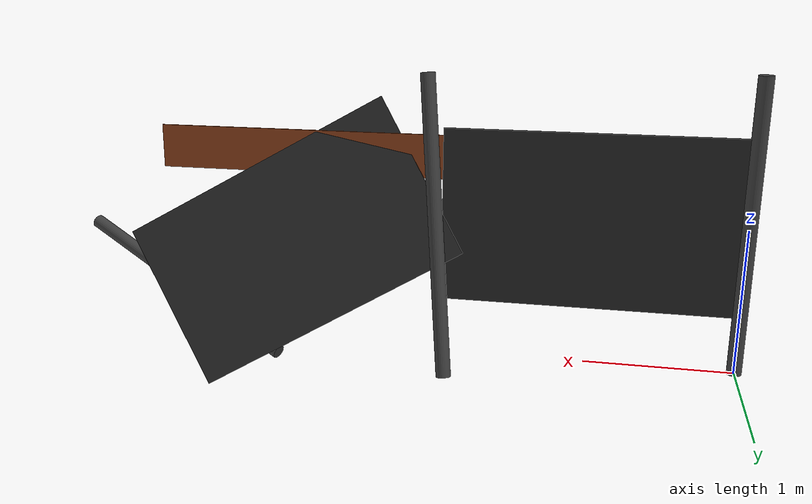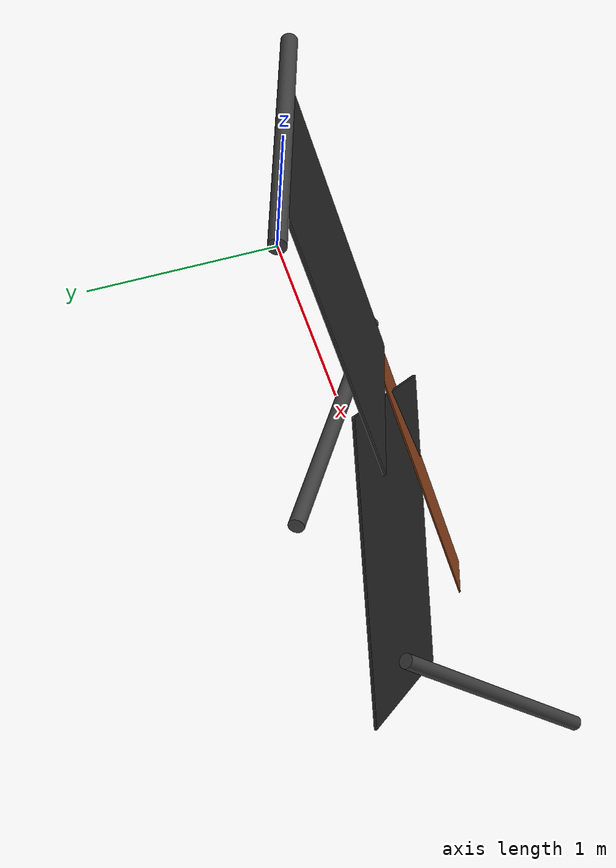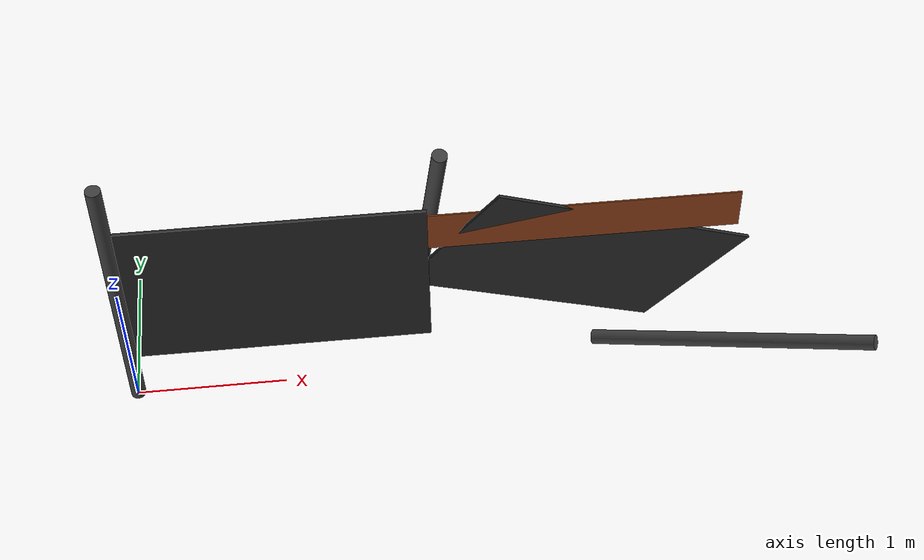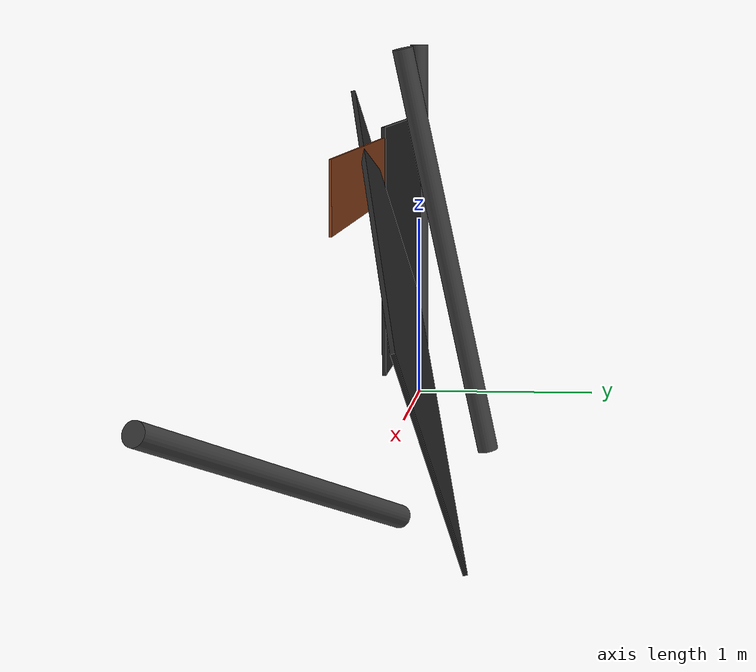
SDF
<?xml version="1.0" ?>
<sdf version="1.7">

  <model name="broken_fence_section">

    <static>true</static>

    <link name="fence_link">

      <!-- POST 1 -->
      <visual name="post_1">

        <pose>0 0 1.0 0 0 0</pose>

        <geometry>
          <cylinder>
            <radius>0.05</radius>
            <length>2.0</length>
          </cylinder>
        </geometry>

        <material>
          <ambient>0.2 0.2 0.2 1</ambient>
          <diffuse>0.25 0.25 0.25 1</diffuse>
        </material>

      </visual>

      <!-- POST 2 (inclinado) -->
      <visual name="post_2">

        <pose>2.0 0.3 1.0 0.2 0.1 0</pose>

        <geometry>
          <cylinder>
            <radius>0.05</radius>
            <length>2.0</length>
          </cylinder>
        </geometry>

        <material>
          <ambient>0.2 0.2 0.2 1</ambient>
          <diffuse>0.25 0.25 0.25 1</diffuse>
        </material>

      </visual>

      <!-- POST 3 (caído) -->
      <visual name="post_3">

        <pose>4.0 -0.2 0.3 1.2 0.4 1.0</pose>

        <geometry>
          <cylinder>
            <radius>0.05</radius>
            <length>2.0</length>
          </cylinder>
        </geometry>

        <material>
          <ambient>0.2 0.2 0.2 1</ambient>
          <diffuse>0.25 0.25 0.25 1</diffuse>
        </material>

      </visual>

      <!-- FENCE PANEL (intact start) -->
      <visual name="panel_1">

        <pose>1.0 0 1.0 0 0 0</pose>

        <geometry>
          <box>
            <size>2.0 0.02 1.2</size>
          </box>
        </geometry>

        <material>
          <ambient>0.1 0.1 0.1 1</ambient>
          <diffuse>0.15 0.15 0.15 1</diffuse>
        </material>

      </visual>

      <!-- BROKEN PANEL (bent) -->
      <visual name="panel_2_bent">

        <pose>3.0 0.2 0.8 0.3 0.5 0.2</pose>

        <geometry>
          <box>
            <size>2.0 0.02 1.2</size>
          </box>
        </geometry>

        <material>
          <ambient>0.1 0.1 0.1 1</ambient>
          <diffuse>0.15 0.15 0.15 1</diffuse>
        </material>

      </visual>

      <!-- RUST PATCH -->
      <visual name="rust">

        <pose>2.5 0 1.4 0 0 0</pose>

        <geometry>
          <box>
            <size>3.0 0.01 0.3</size>
          </box>
        </geometry>

        <material>
          <ambient>0.45 0.2 0.08 1</ambient>
          <diffuse>0.55 0.25 0.1 1</diffuse>
        </material>

      </visual>

    </link>

  </model>

</sdf>
